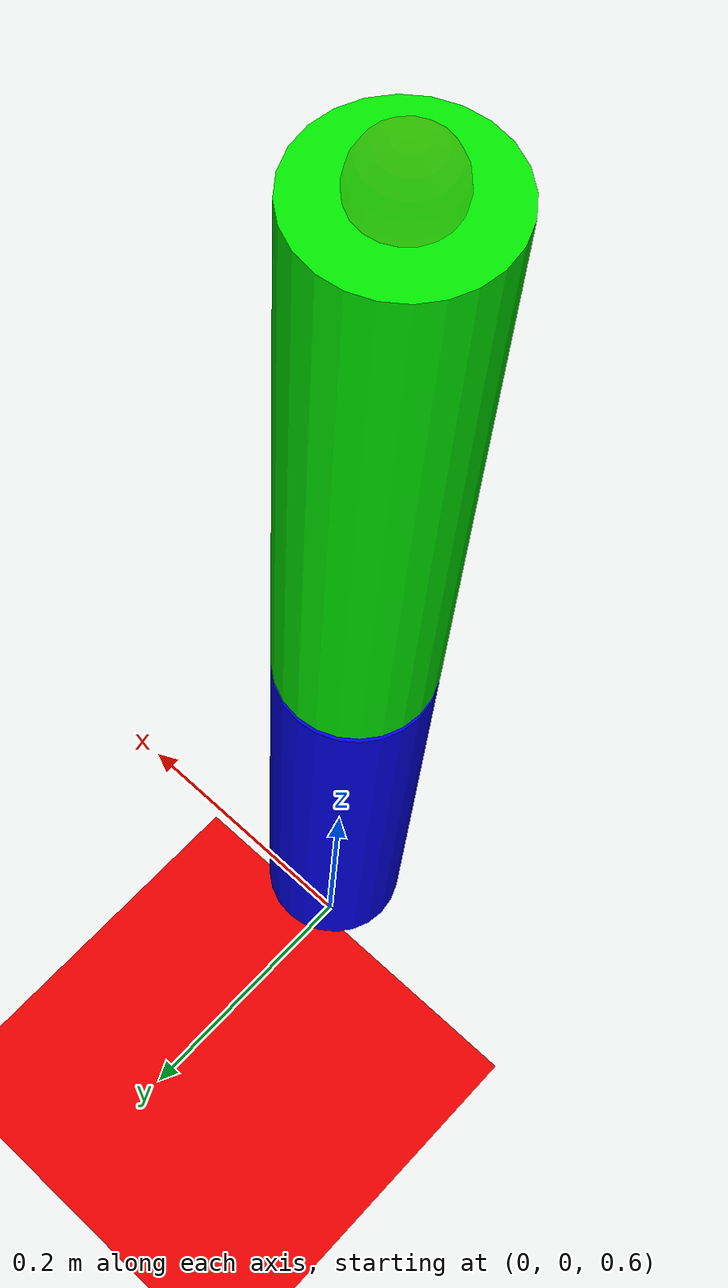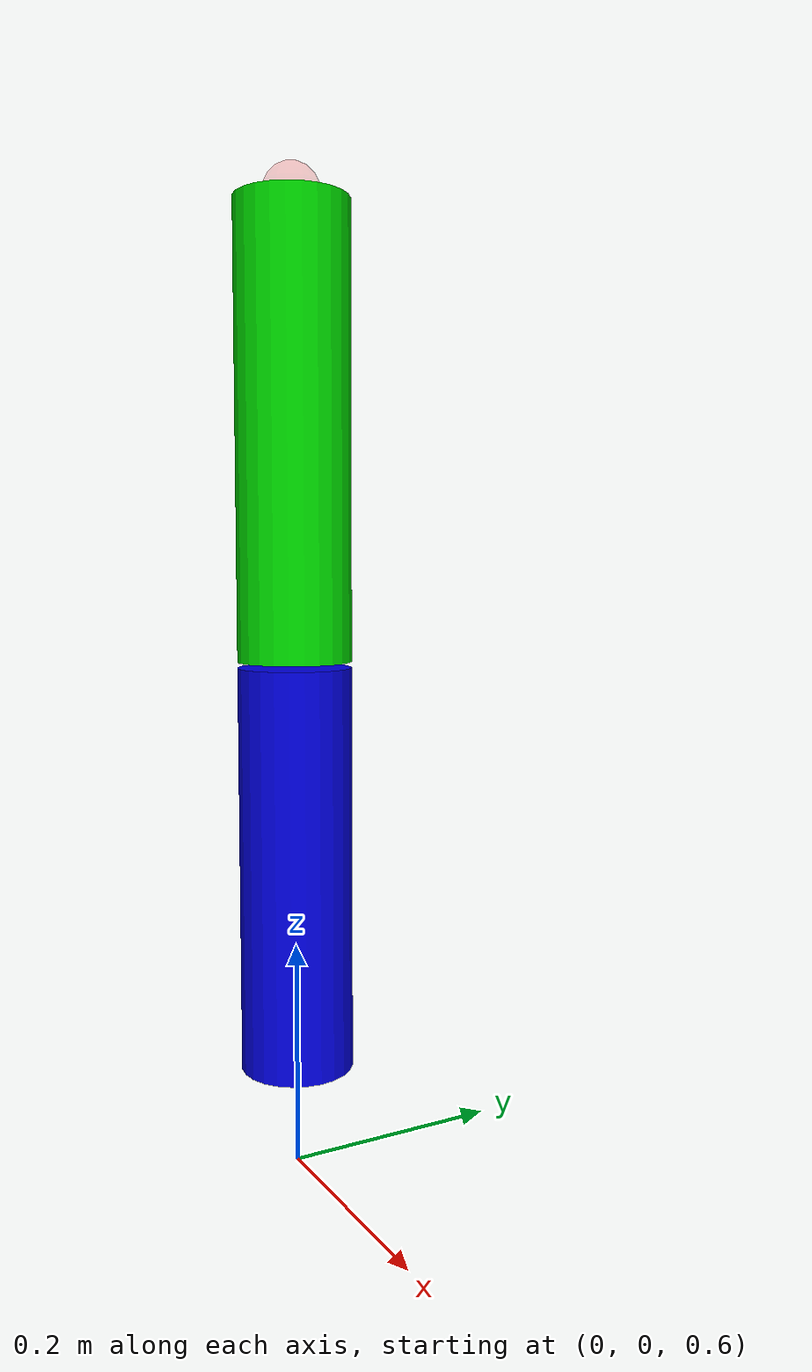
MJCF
<mujoco>
	<option timestep="0.0001" integrator="RK4" >
		<flag sensornoise="enable" energy="enable" contact="enable" />
	</option>
	<worldbody>
        <light diffuse=".5 .5 .5" pos="0 0 3" dir="0 0 -1"/>
		<geom type="plane" size="1 1 0.1" rgba=".9 0 0 0.25"/>
		<geom type="sphere" size="0.025" rgba=".9 0 0 0.2" pos="0 0 1.45"/>
		<body pos="0 0 1.25" euler="0 0 0">
			<joint name="pin" type="hinge" axis = "0 -1 0" pos="0 0 0.2"/>
			<geom type="cylinder" size="0.05 0.195" rgba="0 .9 0 1" mass="1"/>
			<body pos="0 0 -0.38" euler="0 0 0">
				<joint name="pin2" type="hinge" axis = "0 -1 0" pos="0 0 0.185"/>
				<geom type="cylinder" size="0.05 0.18" rgba="0 0 .9 1" mass="1"/>
			</body>
		</body>
	</worldbody>

	<actuator>
		<motor joint="pin" name="torque" gear="1" ctrllimited="true" ctrlrange="-100 100" />
		<motor joint="pin2" name="torque2" gear="1" ctrllimited="true" ctrlrange="-100 100" />
	</actuator>

</mujoco>
